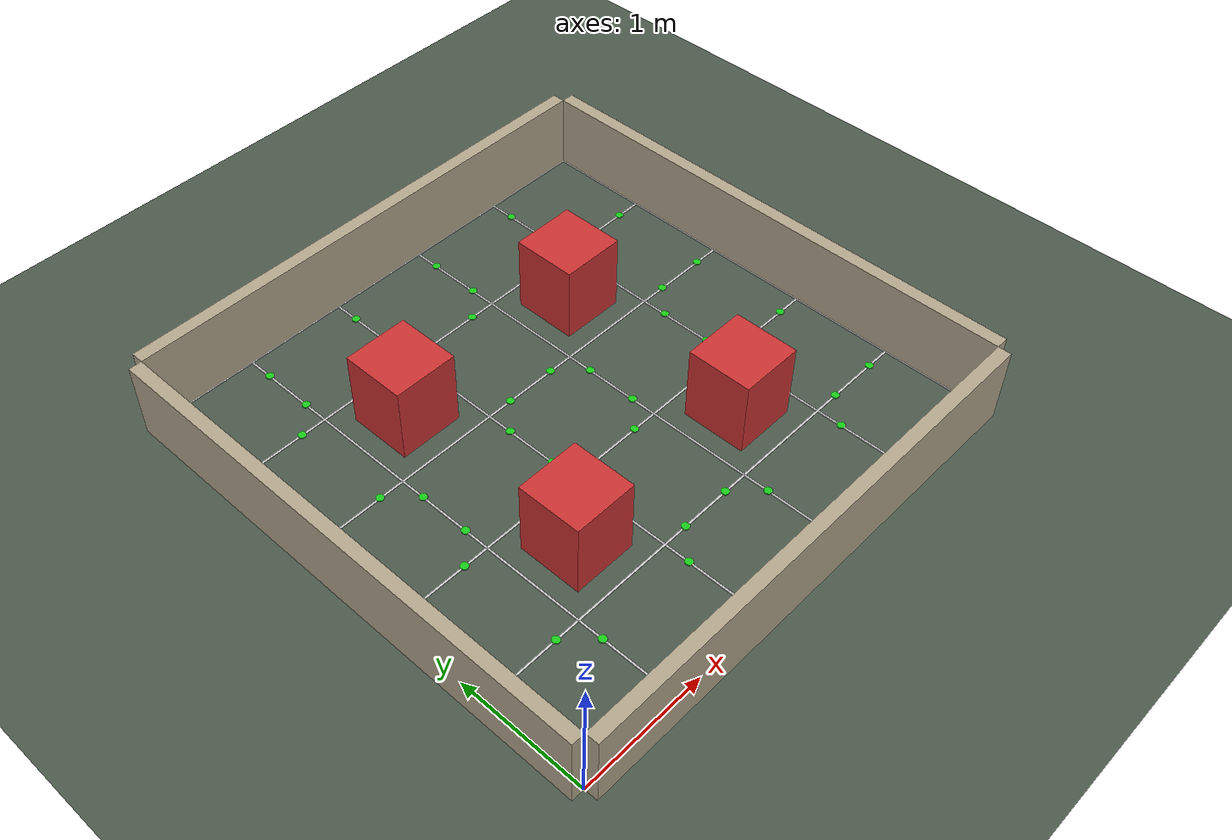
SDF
<?xml version="1.0" encoding="UTF-8"?>
<sdf version="1.7">
  <world name="city_polygon">
    <physics type="ode">
      <max_step_size>0.003</max_step_size>
      <real_time_factor>1.0</real_time_factor>
    </physics>
    <plugin name="gz::sim::systems::Physics" filename="gz-sim-physics-system"/>
    <plugin name="gz::sim::systems::UserCommands" filename="gz-sim-user-commands-system"/>
    <plugin name="gz::sim::systems::SceneBroadcaster" filename="gz-sim-scene-broadcaster-system"/>
    <plugin name="gz::sim::systems::Contact" filename="gz-sim-contact-system"/>

    <scene>
      <ambient>1 1 1 1</ambient>
      <background>0.3 0.7 0.9 1</background>
      <shadows>0</shadows>
      <grid>false</grid>
    </scene>

    <!-- ===== Ground plane ===== -->
    <model name="ground_plane">
      <static>true</static>
      <pose>2.0 2.0 0.0 0 0 0</pose>
      <link name="link">
        <visual name="visual">
          <geometry>
            <plane>
              <normal>0 0 1</normal>
              <size>5 5</size>
            </plane>
          </geometry>
          <material>
            <ambient>0.2 0.2 0.2 1</ambient>
            <diffuse>0.3 0.35 0.3 1</diffuse>
          </material>
        </visual>
        <collision name="collision">
          <geometry>
            <plane>
              <normal>0 0 1</normal>
              <size>5 5</size>
            </plane>
          </geometry>
        </collision>
      </link>
    </model>

    <!-- ===== External walls (4) ===== -->
    <model name="wall_bottom">
      <static>true</static>
      <link name="link">
        <pose>2.0 -0.05 0.3 0 0 0</pose>
        <visual name="visual">
          <geometry><box><size>4.0 0.1 0.6</size></box></geometry>
          <material>
            <ambient>0.6 0.55 0.45 1</ambient>
            <diffuse>0.7 0.65 0.55 1</diffuse>
          </material>
        </visual>
        <collision name="collision">
          <geometry><box><size>4.0 0.1 0.6</size></box></geometry>
        </collision>
      </link>
    </model>

    <model name="wall_top">
      <static>true</static>
      <link name="link">
        <pose>2.0 4.05 0.3 0 0 0</pose>
        <visual name="visual">
          <geometry><box><size>4.0 0.1 0.6</size></box></geometry>
          <material>
            <ambient>0.6 0.55 0.45 1</ambient>
            <diffuse>0.7 0.65 0.55 1</diffuse>
          </material>
        </visual>
        <collision name="collision">
          <geometry><box><size>4.0 0.1 0.6</size></box></geometry>
        </collision>
      </link>
    </model>

    <model name="wall_left">
      <static>true</static>
      <link name="link">
        <pose>-0.05 2.0 0.3 0 0 0</pose>
        <visual name="visual">
          <geometry><box><size>0.1 4.0 0.6</size></box></geometry>
          <material>
            <ambient>0.6 0.55 0.45 1</ambient>
            <diffuse>0.7 0.65 0.55 1</diffuse>
          </material>
        </visual>
        <collision name="collision">
          <geometry><box><size>0.1 4.0 0.6</size></box></geometry>
        </collision>
      </link>
    </model>

    <model name="wall_right">
      <static>true</static>
      <link name="link">
        <pose>4.05 2.0 0.3 0 0 0</pose>
        <visual name="visual">
          <geometry><box><size>0.1 4.0 0.6</size></box></geometry>
          <material>
            <ambient>0.6 0.55 0.45 1</ambient>
            <diffuse>0.7 0.65 0.55 1</diffuse>
          </material>
        </visual>
        <collision name="collision">
          <geometry><box><size>0.1 4.0 0.6</size></box></geometry>
        </collision>
      </link>
    </model>

    <!-- ===== 5x5 Grid lines ===== -->
    <model name="grid_lines">
      <static>true</static>
      <link name="link">
        <!-- Horizontal lines at y = 0.0, 0.8, 1.6, 2.4, 3.2, 4.0 -->
        <visual name="h_y0">
          <pose>2.0 0.0 0.003 0 0 0</pose>
          <geometry><box><size>4.0 0.015 0.005</size></box></geometry>
          <material><ambient>0.8 0.8 0.8 1</ambient></material>
        </visual>
        <visual name="h_y080">
          <pose>2.0 0.8 0.003 0 0 0</pose>
          <geometry><box><size>4.0 0.015 0.005</size></box></geometry>
          <material><ambient>0.8 0.8 0.8 1</ambient></material>
        </visual>
        <visual name="h_y160">
          <pose>2.0 1.6 0.003 0 0 0</pose>
          <geometry><box><size>4.0 0.015 0.005</size></box></geometry>
          <material><ambient>0.8 0.8 0.8 1</ambient></material>
        </visual>
        <visual name="h_y240">
          <pose>2.0 2.4 0.003 0 0 0</pose>
          <geometry><box><size>4.0 0.015 0.005</size></box></geometry>
          <material><ambient>0.8 0.8 0.8 1</ambient></material>
        </visual>
        <visual name="h_y320">
          <pose>2.0 3.2 0.003 0 0 0</pose>
          <geometry><box><size>4.0 0.015 0.005</size></box></geometry>
          <material><ambient>0.8 0.8 0.8 1</ambient></material>
        </visual>
        <visual name="h_y400">
          <pose>2.0 4.0 0.003 0 0 0</pose>
          <geometry><box><size>4.0 0.015 0.005</size></box></geometry>
          <material><ambient>0.8 0.8 0.8 1</ambient></material>
        </visual>
        <!-- Vertical lines at x = 0.0, 0.8, 1.6, 2.4, 3.2, 4.0 -->
        <visual name="v_x0">
          <pose>0.0 2.0 0.003 0 0 0</pose>
          <geometry><box><size>0.015 4.0 0.005</size></box></geometry>
          <material><ambient>0.8 0.8 0.8 1</ambient></material>
        </visual>
        <visual name="v_x080">
          <pose>0.8 2.0 0.003 0 0 0</pose>
          <geometry><box><size>0.015 4.0 0.005</size></box></geometry>
          <material><ambient>0.8 0.8 0.8 1</ambient></material>
        </visual>
        <visual name="v_x160">
          <pose>1.6 2.0 0.003 0 0 0</pose>
          <geometry><box><size>0.015 4.0 0.005</size></box></geometry>
          <material><ambient>0.8 0.8 0.8 1</ambient></material>
        </visual>
        <visual name="v_x240">
          <pose>2.4 2.0 0.003 0 0 0</pose>
          <geometry><box><size>0.015 4.0 0.005</size></box></geometry>
          <material><ambient>0.8 0.8 0.8 1</ambient></material>
        </visual>
        <visual name="v_x320">
          <pose>3.2 2.0 0.003 0 0 0</pose>
          <geometry><box><size>0.015 4.0 0.005</size></box></geometry>
          <material><ambient>0.8 0.8 0.8 1</ambient></material>
        </visual>
        <visual name="v_x400">
          <pose>4.0 2.0 0.003 0 0 0</pose>
          <geometry><box><size>0.015 4.0 0.005</size></box></geometry>
          <material><ambient>0.8 0.8 0.8 1</ambient></material>
        </visual>
      </link>
    </model>

    <!-- ===== Buildings (4) ===== -->
    <!-- Cell (col=2, row=2): center (1.2, 1.2) -->
    <model name="building_22">
      <static>true</static>
      <link name="link">
        <pose>1.2 1.2 0.3 0 0 0</pose>
        <visual name="visual">
          <geometry><box><size>0.5 0.5 0.6</size></box></geometry>
          <material>
            <ambient>0.7 0.1 0.1 1</ambient>
            <diffuse>0.8 0.2 0.2 1</diffuse>
          </material>
        </visual>
        <collision name="collision">
          <geometry><box><size>0.5 0.5 0.6</size></box></geometry>
        </collision>
      </link>
    </model>

    <!-- Cell (col=2, row=4): center (1.2, 2.8) -->
    <model name="building_24">
      <static>true</static>
      <link name="link">
        <pose>1.2 2.8 0.3 0 0 0</pose>
        <visual name="visual">
          <geometry><box><size>0.5 0.5 0.6</size></box></geometry>
          <material>
            <ambient>0.7 0.1 0.1 1</ambient>
            <diffuse>0.8 0.2 0.2 1</diffuse>
          </material>
        </visual>
        <collision name="collision">
          <geometry><box><size>0.5 0.5 0.6</size></box></geometry>
        </collision>
      </link>
    </model>

    <!-- Cell (col=4, row=2): center (2.8, 1.2) -->
    <model name="building_42">
      <static>true</static>
      <link name="link">
        <pose>2.8 1.2 0.3 0 0 0</pose>
        <visual name="visual">
          <geometry><box><size>0.5 0.5 0.6</size></box></geometry>
          <material>
            <ambient>0.7 0.1 0.1 1</ambient>
            <diffuse>0.8 0.2 0.2 1</diffuse>
          </material>
        </visual>
        <collision name="collision">
          <geometry><box><size>0.5 0.5 0.6</size></box></geometry>
        </collision>
      </link>
    </model>

    <!-- Cell (col=4, row=4): center (2.8, 2.8) -->
    <model name="building_44">
      <static>true</static>
      <link name="link">
        <pose>2.8 2.8 0.3 0 0 0</pose>
        <visual name="visual">
          <geometry><box><size>0.5 0.5 0.6</size></box></geometry>
          <material>
            <ambient>0.7 0.1 0.1 1</ambient>
            <diffuse>0.8 0.2 0.2 1</diffuse>
          </material>
        </visual>
        <collision name="collision">
          <geometry><box><size>0.5 0.5 0.6</size></box></geometry>
        </collision>
      </link>
    </model>

    <!-- ===== Graph node markers (48 nodes from graph.yaml) ===== -->
    <model name="node_markers">
      <static>true</static>
      <link name="link">
        <!-- All coordinates from graph.yaml: nodes section -->
        <visual name="node_13"><pose>0.2 0.8 0.008 0 0 0</pose><geometry><cylinder><radius>0.03</radius><length>0.008</length></cylinder></geometry><material><ambient>0.1 0.8 0.1 1</ambient></material></visual>
        <visual name="node_14"><pose>0.2 1.6 0.008 0 0 0</pose><geometry><cylinder><radius>0.03</radius><length>0.008</length></cylinder></geometry><material><ambient>0.1 0.8 0.1 1</ambient></material></visual>
        <visual name="node_17"><pose>0.2 2.4 0.008 0 0 0</pose><geometry><cylinder><radius>0.03</radius><length>0.008</length></cylinder></geometry><material><ambient>0.1 0.8 0.1 1</ambient></material></visual>
        <visual name="node_18"><pose>0.2 3.2 0.008 0 0 0</pose><geometry><cylinder><radius>0.03</radius><length>0.008</length></cylinder></geometry><material><ambient>0.1 0.8 0.1 1</ambient></material></visual>
        <visual name="node_23"><pose>0.6 0.8 0.008 0 0 0</pose><geometry><cylinder><radius>0.03</radius><length>0.008</length></cylinder></geometry><material><ambient>0.1 0.8 0.1 1</ambient></material></visual>
        <visual name="node_24"><pose>0.6 1.6 0.008 0 0 0</pose><geometry><cylinder><radius>0.03</radius><length>0.008</length></cylinder></geometry><material><ambient>0.1 0.8 0.1 1</ambient></material></visual>
        <visual name="node_27"><pose>0.6 2.4 0.008 0 0 0</pose><geometry><cylinder><radius>0.03</radius><length>0.008</length></cylinder></geometry><material><ambient>0.1 0.8 0.1 1</ambient></material></visual>
        <visual name="node_28"><pose>0.6 3.2 0.008 0 0 0</pose><geometry><cylinder><radius>0.03</radius><length>0.008</length></cylinder></geometry><material><ambient>0.1 0.8 0.1 1</ambient></material></visual>
        <visual name="node_31"><pose>0.8 0.2 0.008 0 0 0</pose><geometry><cylinder><radius>0.03</radius><length>0.008</length></cylinder></geometry><material><ambient>0.1 0.8 0.1 1</ambient></material></visual>
        <visual name="node_32"><pose>0.8 0.6 0.008 0 0 0</pose><geometry><cylinder><radius>0.03</radius><length>0.008</length></cylinder></geometry><material><ambient>0.1 0.8 0.1 1</ambient></material></visual>
        <visual name="node_35"><pose>0.8 1.8 0.008 0 0 0</pose><geometry><cylinder><radius>0.03</radius><length>0.008</length></cylinder></geometry><material><ambient>0.1 0.8 0.1 1</ambient></material></visual>
        <visual name="node_36"><pose>0.8 2.2 0.008 0 0 0</pose><geometry><cylinder><radius>0.03</radius><length>0.008</length></cylinder></geometry><material><ambient>0.1 0.8 0.1 1</ambient></material></visual>
        <visual name="node_39"><pose>0.8 3.4 0.008 0 0 0</pose><geometry><cylinder><radius>0.03</radius><length>0.008</length></cylinder></geometry><material><ambient>0.1 0.8 0.1 1</ambient></material></visual>
        <visual name="node_41"><pose>1.6 0.2 0.008 0 0 0</pose><geometry><cylinder><radius>0.03</radius><length>0.008</length></cylinder></geometry><material><ambient>0.1 0.8 0.1 1</ambient></material></visual>
        <visual name="node_42"><pose>1.6 0.6 0.008 0 0 0</pose><geometry><cylinder><radius>0.03</radius><length>0.008</length></cylinder></geometry><material><ambient>0.1 0.8 0.1 1</ambient></material></visual>
        <visual name="node_45"><pose>1.6 1.8 0.008 0 0 0</pose><geometry><cylinder><radius>0.03</radius><length>0.008</length></cylinder></geometry><material><ambient>0.1 0.8 0.1 1</ambient></material></visual>
        <visual name="node_46"><pose>1.6 2.2 0.008 0 0 0</pose><geometry><cylinder><radius>0.03</radius><length>0.008</length></cylinder></geometry><material><ambient>0.1 0.8 0.1 1</ambient></material></visual>
        <visual name="node_49"><pose>1.6 3.4 0.008 0 0 0</pose><geometry><cylinder><radius>0.03</radius><length>0.008</length></cylinder></geometry><material><ambient>0.1 0.8 0.1 1</ambient></material></visual>
        <visual name="node_53"><pose>1.8 0.8 0.008 0 0 0</pose><geometry><cylinder><radius>0.03</radius><length>0.008</length></cylinder></geometry><material><ambient>0.1 0.8 0.1 1</ambient></material></visual>
        <visual name="node_54"><pose>1.8 1.6 0.008 0 0 0</pose><geometry><cylinder><radius>0.03</radius><length>0.008</length></cylinder></geometry><material><ambient>0.1 0.8 0.1 1</ambient></material></visual>
        <visual name="node_57"><pose>1.8 2.4 0.008 0 0 0</pose><geometry><cylinder><radius>0.03</radius><length>0.008</length></cylinder></geometry><material><ambient>0.1 0.8 0.1 1</ambient></material></visual>
        <visual name="node_58"><pose>1.8 3.2 0.008 0 0 0</pose><geometry><cylinder><radius>0.03</radius><length>0.008</length></cylinder></geometry><material><ambient>0.1 0.8 0.1 1</ambient></material></visual>
        <visual name="node_63"><pose>2.2 0.8 0.008 0 0 0</pose><geometry><cylinder><radius>0.03</radius><length>0.008</length></cylinder></geometry><material><ambient>0.1 0.8 0.1 1</ambient></material></visual>
        <visual name="node_64"><pose>2.2 1.6 0.008 0 0 0</pose><geometry><cylinder><radius>0.03</radius><length>0.008</length></cylinder></geometry><material><ambient>0.1 0.8 0.1 1</ambient></material></visual>
        <visual name="node_67"><pose>2.2 2.4 0.008 0 0 0</pose><geometry><cylinder><radius>0.03</radius><length>0.008</length></cylinder></geometry><material><ambient>0.1 0.8 0.1 1</ambient></material></visual>
        <visual name="node_68"><pose>2.2 3.2 0.008 0 0 0</pose><geometry><cylinder><radius>0.03</radius><length>0.008</length></cylinder></geometry><material><ambient>0.1 0.8 0.1 1</ambient></material></visual>
        <visual name="node_71"><pose>2.4 0.2 0.008 0 0 0</pose><geometry><cylinder><radius>0.03</radius><length>0.008</length></cylinder></geometry><material><ambient>0.1 0.8 0.1 1</ambient></material></visual>
        <visual name="node_72"><pose>2.4 0.6 0.008 0 0 0</pose><geometry><cylinder><radius>0.03</radius><length>0.008</length></cylinder></geometry><material><ambient>0.1 0.8 0.1 1</ambient></material></visual>
        <visual name="node_75"><pose>2.4 1.8 0.008 0 0 0</pose><geometry><cylinder><radius>0.03</radius><length>0.008</length></cylinder></geometry><material><ambient>0.1 0.8 0.1 1</ambient></material></visual>
        <visual name="node_76"><pose>2.4 2.2 0.008 0 0 0</pose><geometry><cylinder><radius>0.03</radius><length>0.008</length></cylinder></geometry><material><ambient>0.1 0.8 0.1 1</ambient></material></visual>
        <visual name="node_79"><pose>2.4 3.4 0.008 0 0 0</pose><geometry><cylinder><radius>0.03</radius><length>0.008</length></cylinder></geometry><material><ambient>0.1 0.8 0.1 1</ambient></material></visual>
        <visual name="node_81"><pose>3.2 0.2 0.008 0 0 0</pose><geometry><cylinder><radius>0.03</radius><length>0.008</length></cylinder></geometry><material><ambient>0.1 0.8 0.1 1</ambient></material></visual>
        <visual name="node_82"><pose>3.2 0.6 0.008 0 0 0</pose><geometry><cylinder><radius>0.03</radius><length>0.008</length></cylinder></geometry><material><ambient>0.1 0.8 0.1 1</ambient></material></visual>
        <visual name="node_85"><pose>3.2 1.8 0.008 0 0 0</pose><geometry><cylinder><radius>0.03</radius><length>0.008</length></cylinder></geometry><material><ambient>0.1 0.8 0.1 1</ambient></material></visual>
        <visual name="node_86"><pose>3.2 2.2 0.008 0 0 0</pose><geometry><cylinder><radius>0.03</radius><length>0.008</length></cylinder></geometry><material><ambient>0.1 0.8 0.1 1</ambient></material></visual>
        <visual name="node_89"><pose>3.2 3.4 0.008 0 0 0</pose><geometry><cylinder><radius>0.03</radius><length>0.008</length></cylinder></geometry><material><ambient>0.1 0.8 0.1 1</ambient></material></visual>
        <visual name="node_93"><pose>3.4 0.8 0.008 0 0 0</pose><geometry><cylinder><radius>0.03</radius><length>0.008</length></cylinder></geometry><material><ambient>0.1 0.8 0.1 1</ambient></material></visual>
        <visual name="node_94"><pose>3.4 1.6 0.008 0 0 0</pose><geometry><cylinder><radius>0.03</radius><length>0.008</length></cylinder></geometry><material><ambient>0.1 0.8 0.1 1</ambient></material></visual>
        <visual name="node_97"><pose>3.4 2.4 0.008 0 0 0</pose><geometry><cylinder><radius>0.03</radius><length>0.008</length></cylinder></geometry><material><ambient>0.1 0.8 0.1 1</ambient></material></visual>
        <visual name="node_98"><pose>3.4 3.2 0.008 0 0 0</pose><geometry><cylinder><radius>0.03</radius><length>0.008</length></cylinder></geometry><material><ambient>0.1 0.8 0.1 1</ambient></material></visual>
        <visual name="node_103"><pose>3.8 0.8 0.008 0 0 0</pose><geometry><cylinder><radius>0.03</radius><length>0.008</length></cylinder></geometry><material><ambient>0.1 0.8 0.1 1</ambient></material></visual>
        <visual name="node_104"><pose>3.8 1.6 0.008 0 0 0</pose><geometry><cylinder><radius>0.03</radius><length>0.008</length></cylinder></geometry><material><ambient>0.1 0.8 0.1 1</ambient></material></visual>
        <visual name="node_107"><pose>3.8 2.4 0.008 0 0 0</pose><geometry><cylinder><radius>0.03</radius><length>0.008</length></cylinder></geometry><material><ambient>0.1 0.8 0.1 1</ambient></material></visual>
        <visual name="node_108"><pose>3.8 3.2 0.008 0 0 0</pose><geometry><cylinder><radius>0.03</radius><length>0.008</length></cylinder></geometry><material><ambient>0.1 0.8 0.1 1</ambient></material></visual>
        <visual name="node_310"><pose>0.8 3.8 0.008 0 0 0</pose><geometry><cylinder><radius>0.03</radius><length>0.008</length></cylinder></geometry><material><ambient>0.1 0.8 0.1 1</ambient></material></visual>
        <visual name="node_410"><pose>1.6 3.8 0.008 0 0 0</pose><geometry><cylinder><radius>0.03</radius><length>0.008</length></cylinder></geometry><material><ambient>0.1 0.8 0.1 1</ambient></material></visual>
        <visual name="node_710"><pose>2.4 3.8 0.008 0 0 0</pose><geometry><cylinder><radius>0.03</radius><length>0.008</length></cylinder></geometry><material><ambient>0.1 0.8 0.1 1</ambient></material></visual>
        <visual name="node_810"><pose>3.2 3.8 0.008 0 0 0</pose><geometry><cylinder><radius>0.03</radius><length>0.008</length></cylinder></geometry><material><ambient>0.1 0.8 0.1 1</ambient></material></visual>
      </link>
    </model>

  </world>
</sdf>
